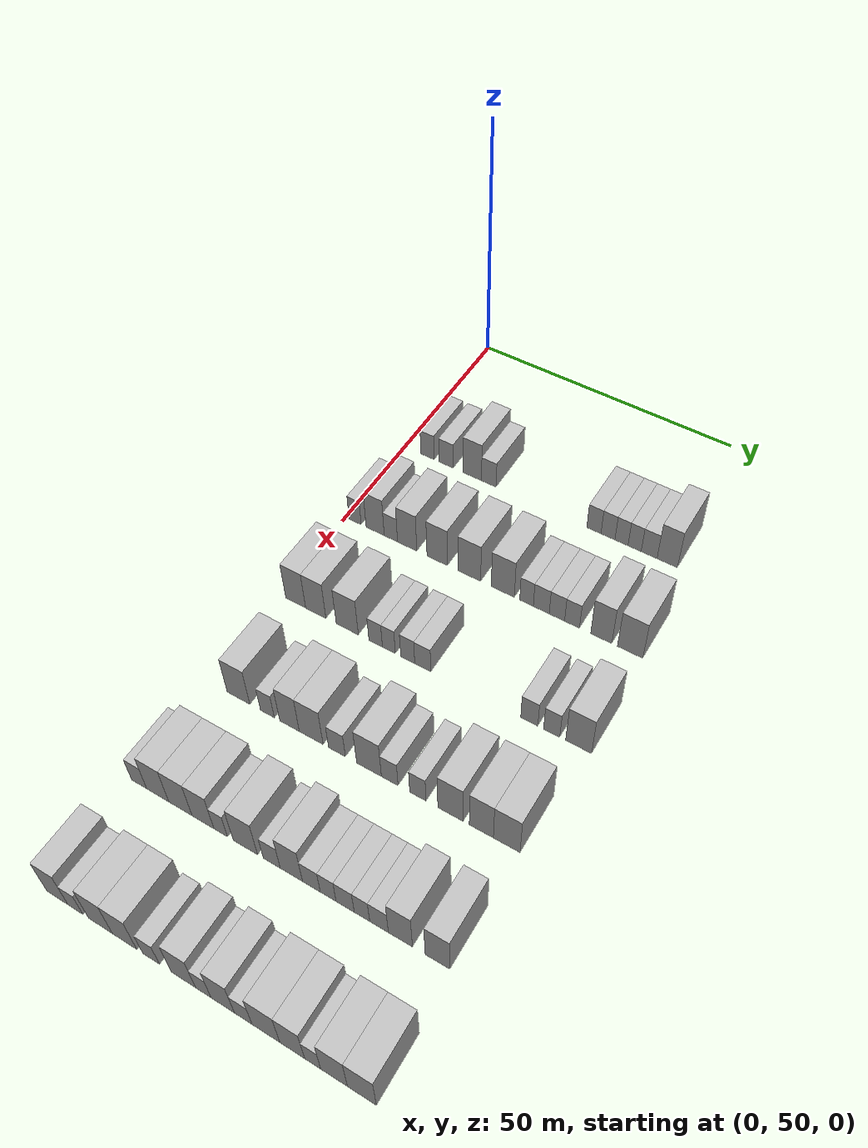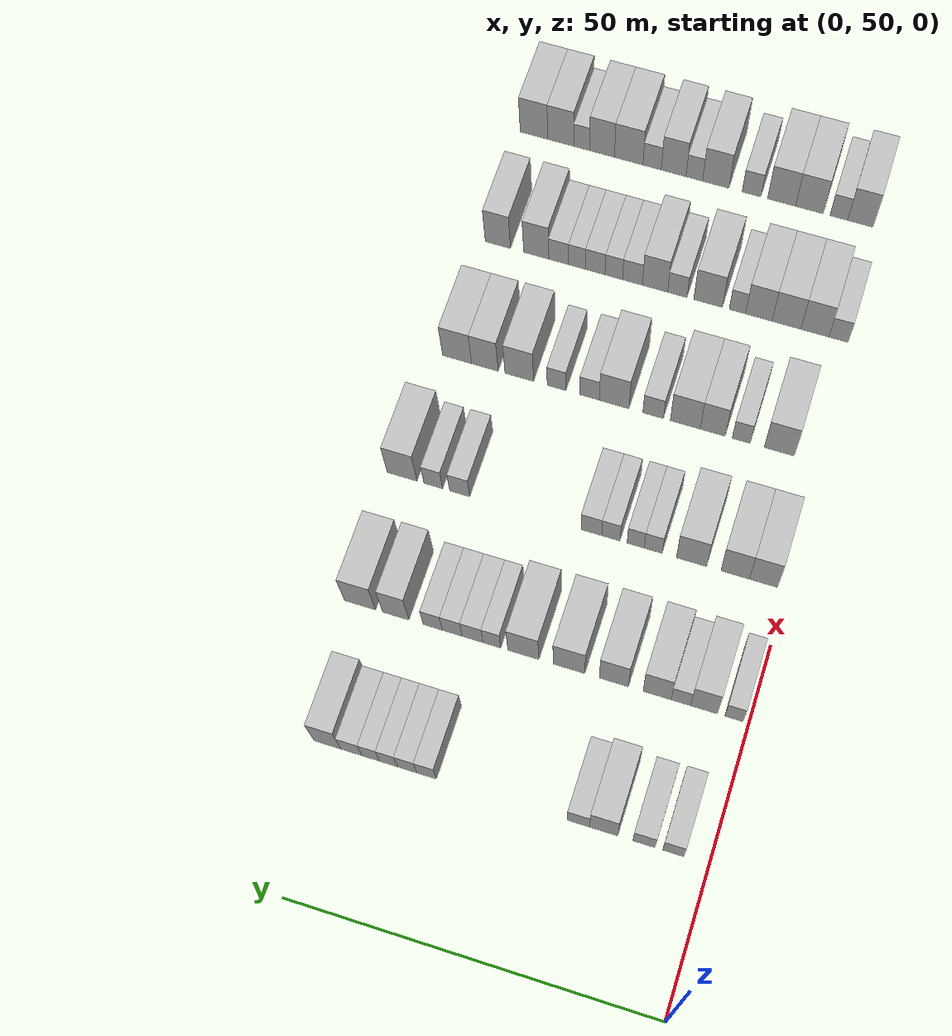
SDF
<sdf version="1.6">
 <world name="default">
  <model name="building_92">
   <static>1</static>
   <pose>25.0000 54.7748 0 0.000000 0.000000 0.000000</pose>
   <link name="link">
    <pose>0 0 3.00 0 0 0</pose>
    <collision name="collision"><geometry><box><size>10.0000 2.7850 6.0000</size></box></geometry></collision>
    <visual name="visual">
     <cast_shadows>0</cast_shadows>
     <geometry><box><size>10.0000 2.7850 6.0000</size></box></geometry>
     <material>
      <script>
       <uri>model://HANNAS_wall/materials/scripts</uri>
       <uri>model://HANNAS_wall/materials/textures</uri>
       <name>vrc/HANNAS_wall</name>
      </script>
     </material>
    </visual>
   </link>
  </model>
  <model name="building_93">
   <static>1</static>
   <pose>25.0000 58.6400 0 0.000000 0.000000 0.000000</pose>
   <link name="link">
    <pose>0 0 3.00 0 0 0</pose>
    <collision name="collision"><geometry><box><size>10.0000 2.9453 6.0000</size></box></geometry></collision>
    <visual name="visual">
     <cast_shadows>0</cast_shadows>
     <geometry><box><size>10.0000 2.9453 6.0000</size></box></geometry>
     <material>
      <script>
       <uri>model://HANNAS_wall/materials/scripts</uri>
       <uri>model://HANNAS_wall/materials/textures</uri>
       <name>vrc/HANNAS_wall</name>
      </script>
     </material>
    </visual>
   </link>
  </model>
  <model name="building_94">
   <static>1</static>
   <pose>25.0000 63.9746 0 0.000000 0.000000 0.000000</pose>
   <link name="link">
    <pose>0 0 4.50 0 0 0</pose>
    <collision name="collision"><geometry><box><size>10.0000 3.7239 9.0000</size></box></geometry></collision>
    <visual name="visual">
     <cast_shadows>0</cast_shadows>
     <geometry><box><size>10.0000 3.7239 9.0000</size></box></geometry>
     <material>
      <script>
       <uri>model://HANNAS_wall/materials/scripts</uri>
       <uri>model://HANNAS_wall/materials/textures</uri>
       <name>vrc/HANNAS_wall</name>
      </script>
     </material>
    </visual>
   </link>
  </model>
  <model name="building_95">
   <static>1</static>
   <pose>25.0000 67.3142 0 0.000000 0.000000 0.000000</pose>
   <link name="link">
    <pose>0 0 3.00 0 0 0</pose>
    <collision name="collision"><geometry><box><size>10.0000 2.9552 6.0000</size></box></geometry></collision>
    <visual name="visual">
     <cast_shadows>0</cast_shadows>
     <geometry><box><size>10.0000 2.9552 6.0000</size></box></geometry>
     <material>
      <script>
       <uri>model://HANNAS_wall/materials/scripts</uri>
       <uri>model://HANNAS_wall/materials/textures</uri>
       <name>vrc/HANNAS_wall</name>
      </script>
     </material>
    </visual>
   </link>
  </model>
  <model name="building_96">
   <static>1</static>
   <pose>25.0000 87.7977 0 0.000000 0.000000 0.000000</pose>
   <link name="link">
    <pose>0 0 3.00 0 0 0</pose>
    <collision name="collision"><geometry><box><size>10.0000 2.6706 6.0000</size></box></geometry></collision>
    <visual name="visual">
     <cast_shadows>0</cast_shadows>
     <geometry><box><size>10.0000 2.6706 6.0000</size></box></geometry>
     <material>
      <script>
       <uri>model://HANNAS_wall/materials/scripts</uri>
       <uri>model://HANNAS_wall/materials/textures</uri>
       <name>vrc/HANNAS_wall</name>
      </script>
     </material>
    </visual>
   </link>
  </model>
  <model name="building_97">
   <static>1</static>
   <pose>25.0000 90.4438 0 0.000000 0.000000 0.000000</pose>
   <link name="link">
    <pose>0 0 3.00 0 0 0</pose>
    <collision name="collision"><geometry><box><size>10.0000 2.6218 6.0000</size></box></geometry></collision>
    <visual name="visual">
     <cast_shadows>0</cast_shadows>
     <geometry><box><size>10.0000 2.6218 6.0000</size></box></geometry>
     <material>
      <script>
       <uri>model://HANNAS_wall/materials/scripts</uri>
       <uri>model://HANNAS_wall/materials/textures</uri>
       <name>vrc/HANNAS_wall</name>
      </script>
     </material>
    </visual>
   </link>
  </model>
  <model name="building_98">
   <static>1</static>
   <pose>25.0000 92.9707 0 0.000000 0.000000 0.000000</pose>
   <link name="link">
    <pose>0 0 3.00 0 0 0</pose>
    <collision name="collision"><geometry><box><size>10.0000 2.4320 6.0000</size></box></geometry></collision>
    <visual name="visual">
     <cast_shadows>0</cast_shadows>
     <geometry><box><size>10.0000 2.4320 6.0000</size></box></geometry>
     <material>
      <script>
       <uri>model://HANNAS_wall/materials/scripts</uri>
       <uri>model://HANNAS_wall/materials/textures</uri>
       <name>vrc/HANNAS_wall</name>
      </script>
     </material>
    </visual>
   </link>
  </model>
  <model name="building_99">
   <static>1</static>
   <pose>25.0000 95.4023 0 0.000000 0.000000 0.000000</pose>
   <link name="link">
    <pose>0 0 3.00 0 0 0</pose>
    <collision name="collision"><geometry><box><size>10.0000 2.4312 6.0000</size></box></geometry></collision>
    <visual name="visual">
     <cast_shadows>0</cast_shadows>
     <geometry><box><size>10.0000 2.4312 6.0000</size></box></geometry>
     <material>
      <script>
       <uri>model://HANNAS_wall/materials/scripts</uri>
       <uri>model://HANNAS_wall/materials/textures</uri>
       <name>vrc/HANNAS_wall</name>
      </script>
     </material>
    </visual>
   </link>
  </model>
  <model name="building_100">
   <static>1</static>
   <pose>25.0000 98.0720 0 0.000000 0.000000 0.000000</pose>
   <link name="link">
    <pose>0 0 3.00 0 0 0</pose>
    <collision name="collision"><geometry><box><size>10.0000 2.9082 6.0000</size></box></geometry></collision>
    <visual name="visual">
     <cast_shadows>0</cast_shadows>
     <geometry><box><size>10.0000 2.9082 6.0000</size></box></geometry>
     <material>
      <script>
       <uri>model://HANNAS_wall/materials/scripts</uri>
       <uri>model://HANNAS_wall/materials/textures</uri>
       <name>vrc/HANNAS_wall</name>
      </script>
     </material>
    </visual>
   </link>
  </model>
  <model name="building_101">
   <static>1</static>
   <pose>25.0000 101.3756 0 0.000000 0.000000 0.000000</pose>
   <link name="link">
    <pose>0 0 4.50 0 0 0</pose>
    <collision name="collision"><geometry><box><size>10.0000 3.6991 9.0000</size></box></geometry></collision>
    <visual name="visual">
     <cast_shadows>0</cast_shadows>
     <geometry><box><size>10.0000 3.6991 9.0000</size></box></geometry>
     <material>
      <script>
       <uri>model://HANNAS_wall/materials/scripts</uri>
       <uri>model://HANNAS_wall/materials/textures</uri>
       <name>vrc/HANNAS_wall</name>
      </script>
     </material>
    </visual>
   </link>
  </model>
  <model name="building_269">
   <static>1</static>
   <pose>44.0000 52.0626 0 0.000000 0.000000 0.000000</pose>
   <link name="link">
    <pose>0 0 3.00 0 0 0</pose>
    <collision name="collision"><geometry><box><size>10.0000 2.4507 6.0000</size></box></geometry></collision>
    <visual name="visual">
     <cast_shadows>0</cast_shadows>
     <geometry><box><size>10.0000 2.4507 6.0000</size></box></geometry>
     <material>
      <script>
       <uri>model://HANNAS_wall/materials/scripts</uri>
       <uri>model://HANNAS_wall/materials/textures</uri>
       <name>vrc/HANNAS_wall</name>
      </script>
     </material>
    </visual>
   </link>
  </model>
  <model name="building_270">
   <static>1</static>
   <pose>44.0000 56.1116 0 0.000000 0.000000 0.000000</pose>
   <link name="link">
    <pose>0 0 4.50 0 0 0</pose>
    <collision name="collision"><geometry><box><size>10.0000 3.6472 9.0000</size></box></geometry></collision>
    <visual name="visual">
     <cast_shadows>0</cast_shadows>
     <geometry><box><size>10.0000 3.6472 9.0000</size></box></geometry>
     <material>
      <script>
       <uri>model://HANNAS_wall/materials/scripts</uri>
       <uri>model://HANNAS_wall/materials/textures</uri>
       <name>vrc/HANNAS_wall</name>
      </script>
     </material>
    </visual>
   </link>
  </model>
  <model name="building_271">
   <static>1</static>
   <pose>44.0000 59.2634 0 0.000000 0.000000 0.000000</pose>
   <link name="link">
    <pose>0 0 3.00 0 0 0</pose>
    <collision name="collision"><geometry><box><size>10.0000 2.6564 6.0000</size></box></geometry></collision>
    <visual name="visual">
     <cast_shadows>0</cast_shadows>
     <geometry><box><size>10.0000 2.6564 6.0000</size></box></geometry>
     <material>
      <script>
       <uri>model://HANNAS_wall/materials/scripts</uri>
       <uri>model://HANNAS_wall/materials/textures</uri>
       <name>vrc/HANNAS_wall</name>
      </script>
     </material>
    </visual>
   </link>
  </model>
  <model name="building_272">
   <static>1</static>
   <pose>44.0000 62.4953 0 0.000000 0.000000 0.000000</pose>
   <link name="link">
    <pose>0 0 4.50 0 0 0</pose>
    <collision name="collision"><geometry><box><size>10.0000 3.8075 9.0000</size></box></geometry></collision>
    <visual name="visual">
     <cast_shadows>0</cast_shadows>
     <geometry><box><size>10.0000 3.8075 9.0000</size></box></geometry>
     <material>
      <script>
       <uri>model://HANNAS_wall/materials/scripts</uri>
       <uri>model://HANNAS_wall/materials/textures</uri>
       <name>vrc/HANNAS_wall</name>
      </script>
     </material>
    </visual>
   </link>
  </model>
  <model name="building_273">
   <static>1</static>
   <pose>44.0000 68.3885 0 0.000000 0.000000 0.000000</pose>
   <link name="link">
    <pose>0 0 4.50 0 0 0</pose>
    <collision name="collision"><geometry><box><size>10.0000 3.9789 9.0000</size></box></geometry></collision>
    <visual name="visual">
     <cast_shadows>0</cast_shadows>
     <geometry><box><size>10.0000 3.9789 9.0000</size></box></geometry>
     <material>
      <script>
       <uri>model://HANNAS_wall/materials/scripts</uri>
       <uri>model://HANNAS_wall/materials/textures</uri>
       <name>vrc/HANNAS_wall</name>
      </script>
     </material>
    </visual>
   </link>
  </model>
  <model name="building_274">
   <static>1</static>
   <pose>44.0000 74.5437 0 0.000000 0.000000 0.000000</pose>
   <link name="link">
    <pose>0 0 4.50 0 0 0</pose>
    <collision name="collision"><geometry><box><size>10.0000 4.3314 9.0000</size></box></geometry></collision>
    <visual name="visual">
     <cast_shadows>0</cast_shadows>
     <geometry><box><size>10.0000 4.3314 9.0000</size></box></geometry>
     <material>
      <script>
       <uri>model://HANNAS_wall/materials/scripts</uri>
       <uri>model://HANNAS_wall/materials/textures</uri>
       <name>vrc/HANNAS_wall</name>
      </script>
     </material>
    </visual>
   </link>
  </model>
  <model name="building_275">
   <static>1</static>
   <pose>44.0000 80.8634 0 0.000000 0.000000 0.000000</pose>
   <link name="link">
    <pose>0 0 4.50 0 0 0</pose>
    <collision name="collision"><geometry><box><size>10.0000 4.3080 9.0000</size></box></geometry></collision>
    <visual name="visual">
     <cast_shadows>0</cast_shadows>
     <geometry><box><size>10.0000 4.3080 9.0000</size></box></geometry>
     <material>
      <script>
       <uri>model://HANNAS_wall/materials/scripts</uri>
       <uri>model://HANNAS_wall/materials/textures</uri>
       <name>vrc/HANNAS_wall</name>
      </script>
     </material>
    </visual>
   </link>
  </model>
  <model name="building_276">
   <static>1</static>
   <pose>44.0000 85.2662 0 0.000000 0.000000 0.000000</pose>
   <link name="link">
    <pose>0 0 3.00 0 0 0</pose>
    <collision name="collision"><geometry><box><size>10.0000 2.4976 6.0000</size></box></geometry></collision>
    <visual name="visual">
     <cast_shadows>0</cast_shadows>
     <geometry><box><size>10.0000 2.4976 6.0000</size></box></geometry>
     <material>
      <script>
       <uri>model://HANNAS_wall/materials/scripts</uri>
       <uri>model://HANNAS_wall/materials/textures</uri>
       <name>vrc/HANNAS_wall</name>
      </script>
     </material>
    </visual>
   </link>
  </model>
  <model name="building_277">
   <static>1</static>
   <pose>44.0000 87.9666 0 0.000000 0.000000 0.000000</pose>
   <link name="link">
    <pose>0 0 3.00 0 0 0</pose>
    <collision name="collision"><geometry><box><size>10.0000 2.9033 6.0000</size></box></geometry></collision>
    <visual name="visual">
     <cast_shadows>0</cast_shadows>
     <geometry><box><size>10.0000 2.9033 6.0000</size></box></geometry>
     <material>
      <script>
       <uri>model://HANNAS_wall/materials/scripts</uri>
       <uri>model://HANNAS_wall/materials/textures</uri>
       <name>vrc/HANNAS_wall</name>
      </script>
     </material>
    </visual>
   </link>
  </model>
  <model name="building_278">
   <static>1</static>
   <pose>44.0000 90.8066 0 0.000000 0.000000 0.000000</pose>
   <link name="link">
    <pose>0 0 3.00 0 0 0</pose>
    <collision name="collision"><geometry><box><size>10.0000 2.7768 6.0000</size></box></geometry></collision>
    <visual name="visual">
     <cast_shadows>0</cast_shadows>
     <geometry><box><size>10.0000 2.7768 6.0000</size></box></geometry>
     <material>
      <script>
       <uri>model://HANNAS_wall/materials/scripts</uri>
       <uri>model://HANNAS_wall/materials/textures</uri>
       <name>vrc/HANNAS_wall</name>
      </script>
     </material>
    </visual>
   </link>
  </model>
  <model name="building_279">
   <static>1</static>
   <pose>44.0000 93.5297 0 0.000000 0.000000 0.000000</pose>
   <link name="link">
    <pose>0 0 3.00 0 0 0</pose>
    <collision name="collision"><geometry><box><size>10.0000 2.6693 6.0000</size></box></geometry></collision>
    <visual name="visual">
     <cast_shadows>0</cast_shadows>
     <geometry><box><size>10.0000 2.6693 6.0000</size></box></geometry>
     <material>
      <script>
       <uri>model://HANNAS_wall/materials/scripts</uri>
       <uri>model://HANNAS_wall/materials/textures</uri>
       <name>vrc/HANNAS_wall</name>
      </script>
     </material>
    </visual>
   </link>
  </model>
  <model name="building_280">
   <static>1</static>
   <pose>44.0000 98.7212 0 0.000000 0.000000 0.000000</pose>
   <link name="link">
    <pose>0 0 4.50 0 0 0</pose>
    <collision name="collision"><geometry><box><size>10.0000 3.7138 9.0000</size></box></geometry></collision>
    <visual name="visual">
     <cast_shadows>0</cast_shadows>
     <geometry><box><size>10.0000 3.7138 9.0000</size></box></geometry>
     <material>
      <script>
       <uri>model://HANNAS_wall/materials/scripts</uri>
       <uri>model://HANNAS_wall/materials/textures</uri>
       <name>vrc/HANNAS_wall</name>
      </script>
     </material>
    </visual>
   </link>
  </model>
  <model name="building_281">
   <static>1</static>
   <pose>44.0000 103.7792 0 0.000000 0.000000 0.000000</pose>
   <link name="link">
    <pose>0 0 4.50 0 0 0</pose>
    <collision name="collision"><geometry><box><size>10.0000 4.4023 9.0000</size></box></geometry></collision>
    <visual name="visual">
     <cast_shadows>0</cast_shadows>
     <geometry><box><size>10.0000 4.4023 9.0000</size></box></geometry>
     <material>
      <script>
       <uri>model://HANNAS_wall/materials/scripts</uri>
       <uri>model://HANNAS_wall/materials/textures</uri>
       <name>vrc/HANNAS_wall</name>
      </script>
     </material>
    </visual>
   </link>
  </model>
  <model name="building_425">
   <static>1</static>
   <pose>63.0000 53.2278 0 0.000000 0.000000 0.000000</pose>
   <link name="link">
    <pose>0 0 4.50 0 0 0</pose>
    <collision name="collision"><geometry><box><size>10.0000 3.9088 9.0000</size></box></geometry></collision>
    <visual name="visual">
     <cast_shadows>0</cast_shadows>
     <geometry><box><size>10.0000 3.9088 9.0000</size></box></geometry>
     <material>
      <script>
       <uri>model://HANNAS_wall/materials/scripts</uri>
       <uri>model://HANNAS_wall/materials/textures</uri>
       <name>vrc/HANNAS_wall</name>
      </script>
     </material>
    </visual>
   </link>
  </model>
  <model name="building_426">
   <static>1</static>
   <pose>63.0000 57.1598 0 0.000000 0.000000 0.000000</pose>
   <link name="link">
    <pose>0 0 4.50 0 0 0</pose>
    <collision name="collision"><geometry><box><size>10.0000 3.9551 9.0000</size></box></geometry></collision>
    <visual name="visual">
     <cast_shadows>0</cast_shadows>
     <geometry><box><size>10.0000 3.9551 9.0000</size></box></geometry>
     <material>
      <script>
       <uri>model://HANNAS_wall/materials/scripts</uri>
       <uri>model://HANNAS_wall/materials/textures</uri>
       <name>vrc/HANNAS_wall</name>
      </script>
     </material>
    </visual>
   </link>
  </model>
  <model name="building_427">
   <static>1</static>
   <pose>63.0000 63.2493 0 0.000000 0.000000 0.000000</pose>
   <link name="link">
    <pose>0 0 4.50 0 0 0</pose>
    <collision name="collision"><geometry><box><size>10.0000 4.2239 9.0000</size></box></geometry></collision>
    <visual name="visual">
     <cast_shadows>0</cast_shadows>
     <geometry><box><size>10.0000 4.2239 9.0000</size></box></geometry>
     <material>
      <script>
       <uri>model://HANNAS_wall/materials/scripts</uri>
       <uri>model://HANNAS_wall/materials/textures</uri>
       <name>vrc/HANNAS_wall</name>
      </script>
     </material>
    </visual>
   </link>
  </model>
  <model name="building_428">
   <static>1</static>
   <pose>63.0000 68.6298 0 0.000000 0.000000 0.000000</pose>
   <link name="link">
    <pose>0 0 3.00 0 0 0</pose>
    <collision name="collision"><geometry><box><size>10.0000 2.5370 6.0000</size></box></geometry></collision>
    <visual name="visual">
     <cast_shadows>0</cast_shadows>
     <geometry><box><size>10.0000 2.5370 6.0000</size></box></geometry>
     <material>
      <script>
       <uri>model://HANNAS_wall/materials/scripts</uri>
       <uri>model://HANNAS_wall/materials/textures</uri>
       <name>vrc/HANNAS_wall</name>
      </script>
     </material>
    </visual>
   </link>
  </model>
  <model name="building_429">
   <static>1</static>
   <pose>63.0000 71.1015 0 0.000000 0.000000 0.000000</pose>
   <link name="link">
    <pose>0 0 3.00 0 0 0</pose>
    <collision name="collision"><geometry><box><size>10.0000 2.4066 6.0000</size></box></geometry></collision>
    <visual name="visual">
     <cast_shadows>0</cast_shadows>
     <geometry><box><size>10.0000 2.4066 6.0000</size></box></geometry>
     <material>
      <script>
       <uri>model://HANNAS_wall/materials/scripts</uri>
       <uri>model://HANNAS_wall/materials/textures</uri>
       <name>vrc/HANNAS_wall</name>
      </script>
     </material>
    </visual>
   </link>
  </model>
  <model name="building_430">
   <static>1</static>
   <pose>63.0000 74.5946 0 0.000000 0.000000 0.000000</pose>
   <link name="link">
    <pose>0 0 3.00 0 0 0</pose>
    <collision name="collision"><geometry><box><size>10.0000 2.5795 6.0000</size></box></geometry></collision>
    <visual name="visual">
     <cast_shadows>0</cast_shadows>
     <geometry><box><size>10.0000 2.5795 6.0000</size></box></geometry>
     <material>
      <script>
       <uri>model://HANNAS_wall/materials/scripts</uri>
       <uri>model://HANNAS_wall/materials/textures</uri>
       <name>vrc/HANNAS_wall</name>
      </script>
     </material>
    </visual>
   </link>
  </model>
  <model name="building_431">
   <static>1</static>
   <pose>63.0000 77.3540 0 0.000000 0.000000 0.000000</pose>
   <link name="link">
    <pose>0 0 3.00 0 0 0</pose>
    <collision name="collision"><geometry><box><size>10.0000 2.9392 6.0000</size></box></geometry></collision>
    <visual name="visual">
     <cast_shadows>0</cast_shadows>
     <geometry><box><size>10.0000 2.9392 6.0000</size></box></geometry>
     <material>
      <script>
       <uri>model://HANNAS_wall/materials/scripts</uri>
       <uri>model://HANNAS_wall/materials/textures</uri>
       <name>vrc/HANNAS_wall</name>
      </script>
     </material>
    </visual>
   </link>
  </model>
  <model name="building_432">
   <static>1</static>
   <pose>63.0000 96.1839 0 0.000000 0.000000 0.000000</pose>
   <link name="link">
    <pose>0 0 3.00 0 0 0</pose>
    <collision name="collision"><geometry><box><size>10.0000 2.9068 6.0000</size></box></geometry></collision>
    <visual name="visual">
     <cast_shadows>0</cast_shadows>
     <geometry><box><size>10.0000 2.9068 6.0000</size></box></geometry>
     <material>
      <script>
       <uri>model://HANNAS_wall/materials/scripts</uri>
       <uri>model://HANNAS_wall/materials/textures</uri>
       <name>vrc/HANNAS_wall</name>
      </script>
     </material>
    </visual>
   </link>
  </model>
  <model name="building_433">
   <static>1</static>
   <pose>63.0000 99.9972 0 0.000000 0.000000 0.000000</pose>
   <link name="link">
    <pose>0 0 3.00 0 0 0</pose>
    <collision name="collision"><geometry><box><size>10.0000 2.7198 6.0000</size></box></geometry></collision>
    <visual name="visual">
     <cast_shadows>0</cast_shadows>
     <geometry><box><size>10.0000 2.7198 6.0000</size></box></geometry>
     <material>
      <script>
       <uri>model://HANNAS_wall/materials/scripts</uri>
       <uri>model://HANNAS_wall/materials/textures</uri>
       <name>vrc/HANNAS_wall</name>
      </script>
     </material>
    </visual>
   </link>
  </model>
  <model name="building_434">
   <static>1</static>
   <pose>63.0000 104.5189 0 0.000000 0.000000 0.000000</pose>
   <link name="link">
    <pose>0 0 4.50 0 0 0</pose>
    <collision name="collision"><geometry><box><size>10.0000 4.3235 9.0000</size></box></geometry></collision>
    <visual name="visual">
     <cast_shadows>0</cast_shadows>
     <geometry><box><size>10.0000 4.3235 9.0000</size></box></geometry>
     <material>
      <script>
       <uri>model://HANNAS_wall/materials/scripts</uri>
       <uri>model://HANNAS_wall/materials/textures</uri>
       <name>vrc/HANNAS_wall</name>
      </script>
     </material>
    </visual>
   </link>
  </model>
  <model name="building_599">
   <static>1</static>
   <pose>82.0000 56.0926 0 0.000000 0.000000 0.000000</pose>
   <link name="link">
    <pose>0 0 4.50 0 0 0</pose>
    <collision name="collision"><geometry><box><size>10.0000 4.2965 9.0000</size></box></geometry></collision>
    <visual name="visual">
     <cast_shadows>0</cast_shadows>
     <geometry><box><size>10.0000 4.2965 9.0000</size></box></geometry>
     <material>
      <script>
       <uri>model://HANNAS_wall/materials/scripts</uri>
       <uri>model://HANNAS_wall/materials/textures</uri>
       <name>vrc/HANNAS_wall</name>
      </script>
     </material>
    </visual>
   </link>
  </model>
  <model name="building_600">
   <static>1</static>
   <pose>82.0000 61.5364 0 0.000000 0.000000 0.000000</pose>
   <link name="link">
    <pose>0 0 3.00 0 0 0</pose>
    <collision name="collision"><geometry><box><size>10.0000 2.5910 6.0000</size></box></geometry></collision>
    <visual name="visual">
     <cast_shadows>0</cast_shadows>
     <geometry><box><size>10.0000 2.5910 6.0000</size></box></geometry>
     <material>
      <script>
       <uri>model://HANNAS_wall/materials/scripts</uri>
       <uri>model://HANNAS_wall/materials/textures</uri>
       <name>vrc/HANNAS_wall</name>
      </script>
     </material>
    </visual>
   </link>
  </model>
  <model name="building_601">
   <static>1</static>
   <pose>82.0000 65.6326 0 0.000000 0.000000 0.000000</pose>
   <link name="link">
    <pose>0 0 4.50 0 0 0</pose>
    <collision name="collision"><geometry><box><size>10.0000 3.6015 9.0000</size></box></geometry></collision>
    <visual name="visual">
     <cast_shadows>0</cast_shadows>
     <geometry><box><size>10.0000 3.6015 9.0000</size></box></geometry>
     <material>
      <script>
       <uri>model://HANNAS_wall/materials/scripts</uri>
       <uri>model://HANNAS_wall/materials/textures</uri>
       <name>vrc/HANNAS_wall</name>
      </script>
     </material>
    </visual>
   </link>
  </model>
  <model name="building_602">
   <static>1</static>
   <pose>82.0000 69.5890 0 0.000000 0.000000 0.000000</pose>
   <link name="link">
    <pose>0 0 4.50 0 0 0</pose>
    <collision name="collision"><geometry><box><size>10.0000 4.3112 9.0000</size></box></geometry></collision>
    <visual name="visual">
     <cast_shadows>0</cast_shadows>
     <geometry><box><size>10.0000 4.3112 9.0000</size></box></geometry>
     <material>
      <script>
       <uri>model://HANNAS_wall/materials/scripts</uri>
       <uri>model://HANNAS_wall/materials/textures</uri>
       <name>vrc/HANNAS_wall</name>
      </script>
     </material>
    </visual>
   </link>
  </model>
  <model name="building_603">
   <static>1</static>
   <pose>82.0000 74.2358 0 0.000000 0.000000 0.000000</pose>
   <link name="link">
    <pose>0 0 3.00 0 0 0</pose>
    <collision name="collision"><geometry><box><size>10.0000 2.9824 6.0000</size></box></geometry></collision>
    <visual name="visual">
     <cast_shadows>0</cast_shadows>
     <geometry><box><size>10.0000 2.9824 6.0000</size></box></geometry>
     <material>
      <script>
       <uri>model://HANNAS_wall/materials/scripts</uri>
       <uri>model://HANNAS_wall/materials/textures</uri>
       <name>vrc/HANNAS_wall</name>
      </script>
     </material>
    </visual>
   </link>
  </model>
  <model name="building_604">
   <static>1</static>
   <pose>82.0000 79.8870 0 0.000000 0.000000 0.000000</pose>
   <link name="link">
    <pose>0 0 4.50 0 0 0</pose>
    <collision name="collision"><geometry><box><size>10.0000 4.3200 9.0000</size></box></geometry></collision>
    <visual name="visual">
     <cast_shadows>0</cast_shadows>
     <geometry><box><size>10.0000 4.3200 9.0000</size></box></geometry>
     <material>
      <script>
       <uri>model://HANNAS_wall/materials/scripts</uri>
       <uri>model://HANNAS_wall/materials/textures</uri>
       <name>vrc/HANNAS_wall</name>
      </script>
     </material>
    </visual>
   </link>
  </model>
  <model name="building_605">
   <static>1</static>
   <pose>82.0000 83.4866 0 0.000000 0.000000 0.000000</pose>
   <link name="link">
    <pose>0 0 3.00 0 0 0</pose>
    <collision name="collision"><geometry><box><size>10.0000 2.8792 6.0000</size></box></geometry></collision>
    <visual name="visual">
     <cast_shadows>0</cast_shadows>
     <geometry><box><size>10.0000 2.8792 6.0000</size></box></geometry>
     <material>
      <script>
       <uri>model://HANNAS_wall/materials/scripts</uri>
       <uri>model://HANNAS_wall/materials/textures</uri>
       <name>vrc/HANNAS_wall</name>
      </script>
     </material>
    </visual>
   </link>
  </model>
  <model name="building_606">
   <static>1</static>
   <pose>82.0000 88.3056 0 0.000000 0.000000 0.000000</pose>
   <link name="link">
    <pose>0 0 3.00 0 0 0</pose>
    <collision name="collision"><geometry><box><size>10.0000 2.7590 6.0000</size></box></geometry></collision>
    <visual name="visual">
     <cast_shadows>0</cast_shadows>
     <geometry><box><size>10.0000 2.7590 6.0000</size></box></geometry>
     <material>
      <script>
       <uri>model://HANNAS_wall/materials/scripts</uri>
       <uri>model://HANNAS_wall/materials/textures</uri>
       <name>vrc/HANNAS_wall</name>
      </script>
     </material>
    </visual>
   </link>
  </model>
  <model name="building_607">
   <static>1</static>
   <pose>82.0000 93.7947 0 0.000000 0.000000 0.000000</pose>
   <link name="link">
    <pose>0 0 4.50 0 0 0</pose>
    <collision name="collision"><geometry><box><size>10.0000 4.2192 9.0000</size></box></geometry></collision>
    <visual name="visual">
     <cast_shadows>0</cast_shadows>
     <geometry><box><size>10.0000 4.2192 9.0000</size></box></geometry>
     <material>
      <script>
       <uri>model://HANNAS_wall/materials/scripts</uri>
       <uri>model://HANNAS_wall/materials/textures</uri>
       <name>vrc/HANNAS_wall</name>
      </script>
     </material>
    </visual>
   </link>
  </model>
  <model name="building_608">
   <static>1</static>
   <pose>82.0000 98.8720 0 0.000000 0.000000 0.000000</pose>
   <link name="link">
    <pose>0 0 4.50 0 0 0</pose>
    <collision name="collision"><geometry><box><size>10.0000 3.9354 9.0000</size></box></geometry></collision>
    <visual name="visual">
     <cast_shadows>0</cast_shadows>
     <geometry><box><size>10.0000 3.9354 9.0000</size></box></geometry>
     <material>
      <script>
       <uri>model://HANNAS_wall/materials/scripts</uri>
       <uri>model://HANNAS_wall/materials/textures</uri>
       <name>vrc/HANNAS_wall</name>
      </script>
     </material>
    </visual>
   </link>
  </model>
  <model name="building_609">
   <static>1</static>
   <pose>82.0000 102.9930 0 0.000000 0.000000 0.000000</pose>
   <link name="link">
    <pose>0 0 4.50 0 0 0</pose>
    <collision name="collision"><geometry><box><size>10.0000 4.3066 9.0000</size></box></geometry></collision>
    <visual name="visual">
     <cast_shadows>0</cast_shadows>
     <geometry><box><size>10.0000 4.3066 9.0000</size></box></geometry>
     <material>
      <script>
       <uri>model://HANNAS_wall/materials/scripts</uri>
       <uri>model://HANNAS_wall/materials/textures</uri>
       <name>vrc/HANNAS_wall</name>
      </script>
     </material>
    </visual>
   </link>
  </model>
  <model name="building_772">
   <static>1</static>
   <pose>101.0000 52.5023 0 0.000000 0.000000 0.000000</pose>
   <link name="link">
    <pose>0 0 3.00 0 0 0</pose>
    <collision name="collision"><geometry><box><size>10.0000 2.8145 6.0000</size></box></geometry></collision>
    <visual name="visual">
     <cast_shadows>0</cast_shadows>
     <geometry><box><size>10.0000 2.8145 6.0000</size></box></geometry>
     <material>
      <script>
       <uri>model://HANNAS_wall/materials/scripts</uri>
       <uri>model://HANNAS_wall/materials/textures</uri>
       <name>vrc/HANNAS_wall</name>
      </script>
     </material>
    </visual>
   </link>
  </model>
  <model name="building_773">
   <static>1</static>
   <pose>101.0000 55.9539 0 0.000000 0.000000 0.000000</pose>
   <link name="link">
    <pose>0 0 4.50 0 0 0</pose>
    <collision name="collision"><geometry><box><size>10.0000 4.0887 9.0000</size></box></geometry></collision>
    <visual name="visual">
     <cast_shadows>0</cast_shadows>
     <geometry><box><size>10.0000 4.0887 9.0000</size></box></geometry>
     <material>
      <script>
       <uri>model://HANNAS_wall/materials/scripts</uri>
       <uri>model://HANNAS_wall/materials/textures</uri>
       <name>vrc/HANNAS_wall</name>
      </script>
     </material>
    </visual>
   </link>
  </model>
  <model name="building_774">
   <static>1</static>
   <pose>101.0000 60.1109 0 0.000000 0.000000 0.000000</pose>
   <link name="link">
    <pose>0 0 4.50 0 0 0</pose>
    <collision name="collision"><geometry><box><size>10.0000 4.2253 9.0000</size></box></geometry></collision>
    <visual name="visual">
     <cast_shadows>0</cast_shadows>
     <geometry><box><size>10.0000 4.2253 9.0000</size></box></geometry>
     <material>
      <script>
       <uri>model://HANNAS_wall/materials/scripts</uri>
       <uri>model://HANNAS_wall/materials/textures</uri>
       <name>vrc/HANNAS_wall</name>
      </script>
     </material>
    </visual>
   </link>
  </model>
  <model name="building_775">
   <static>1</static>
   <pose>101.0000 64.1785 0 0.000000 0.000000 0.000000</pose>
   <link name="link">
    <pose>0 0 4.50 0 0 0</pose>
    <collision name="collision"><geometry><box><size>10.0000 3.9100 9.0000</size></box></geometry></collision>
    <visual name="visual">
     <cast_shadows>0</cast_shadows>
     <geometry><box><size>10.0000 3.9100 9.0000</size></box></geometry>
     <material>
      <script>
       <uri>model://HANNAS_wall/materials/scripts</uri>
       <uri>model://HANNAS_wall/materials/textures</uri>
       <name>vrc/HANNAS_wall</name>
      </script>
     </material>
    </visual>
   </link>
  </model>
  <model name="building_776">
   <static>1</static>
   <pose>101.0000 67.3393 0 0.000000 0.000000 0.000000</pose>
   <link name="link">
    <pose>0 0 3.00 0 0 0</pose>
    <collision name="collision"><geometry><box><size>10.0000 2.4117 6.0000</size></box></geometry></collision>
    <visual name="visual">
     <cast_shadows>0</cast_shadows>
     <geometry><box><size>10.0000 2.4117 6.0000</size></box></geometry>
     <material>
      <script>
       <uri>model://HANNAS_wall/materials/scripts</uri>
       <uri>model://HANNAS_wall/materials/textures</uri>
       <name>vrc/HANNAS_wall</name>
      </script>
     </material>
    </visual>
   </link>
  </model>
  <model name="building_777">
   <static>1</static>
   <pose>101.0000 71.6656 0 0.000000 0.000000 0.000000</pose>
   <link name="link">
    <pose>0 0 4.50 0 0 0</pose>
    <collision name="collision"><geometry><box><size>10.0000 4.2410 9.0000</size></box></geometry></collision>
    <visual name="visual">
     <cast_shadows>0</cast_shadows>
     <geometry><box><size>10.0000 4.2410 9.0000</size></box></geometry>
     <material>
      <script>
       <uri>model://HANNAS_wall/materials/scripts</uri>
       <uri>model://HANNAS_wall/materials/textures</uri>
       <name>vrc/HANNAS_wall</name>
      </script>
     </material>
    </visual>
   </link>
  </model>
  <model name="building_778">
   <static>1</static>
   <pose>101.0000 76.2319 0 0.000000 0.000000 0.000000</pose>
   <link name="link">
    <pose>0 0 3.00 0 0 0</pose>
    <collision name="collision"><geometry><box><size>10.0000 2.8915 6.0000</size></box></geometry></collision>
    <visual name="visual">
     <cast_shadows>0</cast_shadows>
     <geometry><box><size>10.0000 2.8915 6.0000</size></box></geometry>
     <material>
      <script>
       <uri>model://HANNAS_wall/materials/scripts</uri>
       <uri>model://HANNAS_wall/materials/textures</uri>
       <name>vrc/HANNAS_wall</name>
      </script>
     </material>
    </visual>
   </link>
  </model>
  <model name="building_779">
   <static>1</static>
   <pose>101.0000 79.5654 0 0.000000 0.000000 0.000000</pose>
   <link name="link">
    <pose>0 0 4.50 0 0 0</pose>
    <collision name="collision"><geometry><box><size>10.0000 3.7754 9.0000</size></box></geometry></collision>
    <visual name="visual">
     <cast_shadows>0</cast_shadows>
     <geometry><box><size>10.0000 3.7754 9.0000</size></box></geometry>
     <material>
      <script>
       <uri>model://HANNAS_wall/materials/scripts</uri>
       <uri>model://HANNAS_wall/materials/textures</uri>
       <name>vrc/HANNAS_wall</name>
      </script>
     </material>
    </visual>
   </link>
  </model>
  <model name="building_780">
   <static>1</static>
   <pose>101.0000 82.9402 0 0.000000 0.000000 0.000000</pose>
   <link name="link">
    <pose>0 0 3.00 0 0 0</pose>
    <collision name="collision"><geometry><box><size>10.0000 2.9743 6.0000</size></box></geometry></collision>
    <visual name="visual">
     <cast_shadows>0</cast_shadows>
     <geometry><box><size>10.0000 2.9743 6.0000</size></box></geometry>
     <material>
      <script>
       <uri>model://HANNAS_wall/materials/scripts</uri>
       <uri>model://HANNAS_wall/materials/textures</uri>
       <name>vrc/HANNAS_wall</name>
      </script>
     </material>
    </visual>
   </link>
  </model>
  <model name="building_781">
   <static>1</static>
   <pose>101.0000 85.7361 0 0.000000 0.000000 0.000000</pose>
   <link name="link">
    <pose>0 0 3.00 0 0 0</pose>
    <collision name="collision"><geometry><box><size>10.0000 2.6175 6.0000</size></box></geometry></collision>
    <visual name="visual">
     <cast_shadows>0</cast_shadows>
     <geometry><box><size>10.0000 2.6175 6.0000</size></box></geometry>
     <material>
      <script>
       <uri>model://HANNAS_wall/materials/scripts</uri>
       <uri>model://HANNAS_wall/materials/textures</uri>
       <name>vrc/HANNAS_wall</name>
      </script>
     </material>
    </visual>
   </link>
  </model>
  <model name="building_782">
   <static>1</static>
   <pose>101.0000 88.5264 0 0.000000 0.000000 0.000000</pose>
   <link name="link">
    <pose>0 0 3.00 0 0 0</pose>
    <collision name="collision"><geometry><box><size>10.0000 2.9631 6.0000</size></box></geometry></collision>
    <visual name="visual">
     <cast_shadows>0</cast_shadows>
     <geometry><box><size>10.0000 2.9631 6.0000</size></box></geometry>
     <material>
      <script>
       <uri>model://HANNAS_wall/materials/scripts</uri>
       <uri>model://HANNAS_wall/materials/textures</uri>
       <name>vrc/HANNAS_wall</name>
      </script>
     </material>
    </visual>
   </link>
  </model>
  <model name="building_783">
   <static>1</static>
   <pose>101.0000 91.2627 0 0.000000 0.000000 0.000000</pose>
   <link name="link">
    <pose>0 0 3.00 0 0 0</pose>
    <collision name="collision"><geometry><box><size>10.0000 2.5095 6.0000</size></box></geometry></collision>
    <visual name="visual">
     <cast_shadows>0</cast_shadows>
     <geometry><box><size>10.0000 2.5095 6.0000</size></box></geometry>
     <material>
      <script>
       <uri>model://HANNAS_wall/materials/scripts</uri>
       <uri>model://HANNAS_wall/materials/textures</uri>
       <name>vrc/HANNAS_wall</name>
      </script>
     </material>
    </visual>
   </link>
  </model>
  <model name="building_784">
   <static>1</static>
   <pose>101.0000 94.0070 0 0.000000 0.000000 0.000000</pose>
   <link name="link">
    <pose>0 0 3.00 0 0 0</pose>
    <collision name="collision"><geometry><box><size>10.0000 2.9790 6.0000</size></box></geometry></collision>
    <visual name="visual">
     <cast_shadows>0</cast_shadows>
     <geometry><box><size>10.0000 2.9790 6.0000</size></box></geometry>
     <material>
      <script>
       <uri>model://HANNAS_wall/materials/scripts</uri>
       <uri>model://HANNAS_wall/materials/textures</uri>
       <name>vrc/HANNAS_wall</name>
      </script>
     </material>
    </visual>
   </link>
  </model>
  <model name="building_785">
   <static>1</static>
   <pose>101.0000 97.4019 0 0.000000 0.000000 0.000000</pose>
   <link name="link">
    <pose>0 0 4.50 0 0 0</pose>
    <collision name="collision"><geometry><box><size>10.0000 3.8109 9.0000</size></box></geometry></collision>
    <visual name="visual">
     <cast_shadows>0</cast_shadows>
     <geometry><box><size>10.0000 3.8109 9.0000</size></box></geometry>
     <material>
      <script>
       <uri>model://HANNAS_wall/materials/scripts</uri>
       <uri>model://HANNAS_wall/materials/textures</uri>
       <name>vrc/HANNAS_wall</name>
      </script>
     </material>
    </visual>
   </link>
  </model>
  <model name="building_786">
   <static>1</static>
   <pose>101.0000 103.2199 0 0.000000 0.000000 0.000000</pose>
   <link name="link">
    <pose>0 0 4.50 0 0 0</pose>
    <collision name="collision"><geometry><box><size>10.0000 3.8250 9.0000</size></box></geometry></collision>
    <visual name="visual">
     <cast_shadows>0</cast_shadows>
     <geometry><box><size>10.0000 3.8250 9.0000</size></box></geometry>
     <material>
      <script>
       <uri>model://HANNAS_wall/materials/scripts</uri>
       <uri>model://HANNAS_wall/materials/textures</uri>
       <name>vrc/HANNAS_wall</name>
      </script>
     </material>
    </visual>
   </link>
  </model>
  <model name="building_935">
   <static>1</static>
   <pose>120.0000 54.0568 0 0.000000 0.000000 0.000000</pose>
   <link name="link">
    <pose>0 0 4.50 0 0 0</pose>
    <collision name="collision"><geometry><box><size>10.0000 3.8105 9.0000</size></box></geometry></collision>
    <visual name="visual">
     <cast_shadows>0</cast_shadows>
     <geometry><box><size>10.0000 3.8105 9.0000</size></box></geometry>
     <material>
      <script>
       <uri>model://HANNAS_wall/materials/scripts</uri>
       <uri>model://HANNAS_wall/materials/textures</uri>
       <name>vrc/HANNAS_wall</name>
      </script>
     </material>
    </visual>
   </link>
  </model>
  <model name="building_936">
   <static>1</static>
   <pose>120.0000 57.2849 0 0.000000 0.000000 0.000000</pose>
   <link name="link">
    <pose>0 0 3.00 0 0 0</pose>
    <collision name="collision"><geometry><box><size>10.0000 2.6457 6.0000</size></box></geometry></collision>
    <visual name="visual">
     <cast_shadows>0</cast_shadows>
     <geometry><box><size>10.0000 2.6457 6.0000</size></box></geometry>
     <material>
      <script>
       <uri>model://HANNAS_wall/materials/scripts</uri>
       <uri>model://HANNAS_wall/materials/textures</uri>
       <name>vrc/HANNAS_wall</name>
      </script>
     </material>
    </visual>
   </link>
  </model>
  <model name="building_937">
   <static>1</static>
   <pose>120.0000 61.6963 0 0.000000 0.000000 0.000000</pose>
   <link name="link">
    <pose>0 0 4.50 0 0 0</pose>
    <collision name="collision"><geometry><box><size>10.0000 4.1772 9.0000</size></box></geometry></collision>
    <visual name="visual">
     <cast_shadows>0</cast_shadows>
     <geometry><box><size>10.0000 4.1772 9.0000</size></box></geometry>
     <material>
      <script>
       <uri>model://HANNAS_wall/materials/scripts</uri>
       <uri>model://HANNAS_wall/materials/textures</uri>
       <name>vrc/HANNAS_wall</name>
      </script>
     </material>
    </visual>
   </link>
  </model>
  <model name="building_938">
   <static>1</static>
   <pose>120.0000 65.8961 0 0.000000 0.000000 0.000000</pose>
   <link name="link">
    <pose>0 0 4.50 0 0 0</pose>
    <collision name="collision"><geometry><box><size>10.0000 4.2222 9.0000</size></box></geometry></collision>
    <visual name="visual">
     <cast_shadows>0</cast_shadows>
     <geometry><box><size>10.0000 4.2222 9.0000</size></box></geometry>
     <material>
      <script>
       <uri>model://HANNAS_wall/materials/scripts</uri>
       <uri>model://HANNAS_wall/materials/textures</uri>
       <name>vrc/HANNAS_wall</name>
      </script>
     </material>
    </visual>
   </link>
  </model>
  <model name="building_939">
   <static>1</static>
   <pose>120.0000 70.4310 0 0.000000 0.000000 0.000000</pose>
   <link name="link">
    <pose>0 0 3.00 0 0 0</pose>
    <collision name="collision"><geometry><box><size>10.0000 2.8477 6.0000</size></box></geometry></collision>
    <visual name="visual">
     <cast_shadows>0</cast_shadows>
     <geometry><box><size>10.0000 2.8477 6.0000</size></box></geometry>
     <material>
      <script>
       <uri>model://HANNAS_wall/materials/scripts</uri>
       <uri>model://HANNAS_wall/materials/textures</uri>
       <name>vrc/HANNAS_wall</name>
      </script>
     </material>
    </visual>
   </link>
  </model>
  <model name="building_940">
   <static>1</static>
   <pose>120.0000 75.8707 0 0.000000 0.000000 0.000000</pose>
   <link name="link">
    <pose>0 0 4.50 0 0 0</pose>
    <collision name="collision"><geometry><box><size>10.0000 4.0316 9.0000</size></box></geometry></collision>
    <visual name="visual">
     <cast_shadows>0</cast_shadows>
     <geometry><box><size>10.0000 4.0316 9.0000</size></box></geometry>
     <material>
      <script>
       <uri>model://HANNAS_wall/materials/scripts</uri>
       <uri>model://HANNAS_wall/materials/textures</uri>
       <name>vrc/HANNAS_wall</name>
      </script>
     </material>
    </visual>
   </link>
  </model>
  <model name="building_941">
   <static>1</static>
   <pose>120.0000 79.1520 0 0.000000 0.000000 0.000000</pose>
   <link name="link">
    <pose>0 0 3.00 0 0 0</pose>
    <collision name="collision"><geometry><box><size>10.0000 2.5311 6.0000</size></box></geometry></collision>
    <visual name="visual">
     <cast_shadows>0</cast_shadows>
     <geometry><box><size>10.0000 2.5311 6.0000</size></box></geometry>
     <material>
      <script>
       <uri>model://HANNAS_wall/materials/scripts</uri>
       <uri>model://HANNAS_wall/materials/textures</uri>
       <name>vrc/HANNAS_wall</name>
      </script>
     </material>
    </visual>
   </link>
  </model>
  <model name="building_942">
   <static>1</static>
   <pose>120.0000 82.3100 0 0.000000 0.000000 0.000000</pose>
   <link name="link">
    <pose>0 0 4.50 0 0 0</pose>
    <collision name="collision"><geometry><box><size>10.0000 3.7848 9.0000</size></box></geometry></collision>
    <visual name="visual">
     <cast_shadows>0</cast_shadows>
     <geometry><box><size>10.0000 3.7848 9.0000</size></box></geometry>
     <material>
      <script>
       <uri>model://HANNAS_wall/materials/scripts</uri>
       <uri>model://HANNAS_wall/materials/textures</uri>
       <name>vrc/HANNAS_wall</name>
      </script>
     </material>
    </visual>
   </link>
  </model>
  <model name="building_943">
   <static>1</static>
   <pose>120.0000 85.6032 0 0.000000 0.000000 0.000000</pose>
   <link name="link">
    <pose>0 0 3.00 0 0 0</pose>
    <collision name="collision"><geometry><box><size>10.0000 2.8016 6.0000</size></box></geometry></collision>
    <visual name="visual">
     <cast_shadows>0</cast_shadows>
     <geometry><box><size>10.0000 2.8016 6.0000</size></box></geometry>
     <material>
      <script>
       <uri>model://HANNAS_wall/materials/scripts</uri>
       <uri>model://HANNAS_wall/materials/textures</uri>
       <name>vrc/HANNAS_wall</name>
      </script>
     </material>
    </visual>
   </link>
  </model>
  <model name="building_944">
   <static>1</static>
   <pose>120.0000 89.1938 0 0.000000 0.000000 0.000000</pose>
   <link name="link">
    <pose>0 0 4.50 0 0 0</pose>
    <collision name="collision"><geometry><box><size>10.0000 4.3796 9.0000</size></box></geometry></collision>
    <visual name="visual">
     <cast_shadows>0</cast_shadows>
     <geometry><box><size>10.0000 4.3796 9.0000</size></box></geometry>
     <material>
      <script>
       <uri>model://HANNAS_wall/materials/scripts</uri>
       <uri>model://HANNAS_wall/materials/textures</uri>
       <name>vrc/HANNAS_wall</name>
      </script>
     </material>
    </visual>
   </link>
  </model>
  <model name="building_945">
   <static>1</static>
   <pose>120.0000 93.3012 0 0.000000 0.000000 0.000000</pose>
   <link name="link">
    <pose>0 0 4.50 0 0 0</pose>
    <collision name="collision"><geometry><box><size>10.0000 3.8351 9.0000</size></box></geometry></collision>
    <visual name="visual">
     <cast_shadows>0</cast_shadows>
     <geometry><box><size>10.0000 3.8351 9.0000</size></box></geometry>
     <material>
      <script>
       <uri>model://HANNAS_wall/materials/scripts</uri>
       <uri>model://HANNAS_wall/materials/textures</uri>
       <name>vrc/HANNAS_wall</name>
      </script>
     </material>
    </visual>
   </link>
  </model>
  <model name="building_946">
   <static>1</static>
   <pose>120.0000 96.4412 0 0.000000 0.000000 0.000000</pose>
   <link name="link">
    <pose>0 0 3.00 0 0 0</pose>
    <collision name="collision"><geometry><box><size>10.0000 2.4449 6.0000</size></box></geometry></collision>
    <visual name="visual">
     <cast_shadows>0</cast_shadows>
     <geometry><box><size>10.0000 2.4449 6.0000</size></box></geometry>
     <material>
      <script>
       <uri>model://HANNAS_wall/materials/scripts</uri>
       <uri>model://HANNAS_wall/materials/textures</uri>
       <name>vrc/HANNAS_wall</name>
      </script>
     </material>
    </visual>
   </link>
  </model>
  <model name="building_947">
   <static>1</static>
   <pose>120.0000 99.6861 0 0.000000 0.000000 0.000000</pose>
   <link name="link">
    <pose>0 0 4.50 0 0 0</pose>
    <collision name="collision"><geometry><box><size>10.0000 4.0451 9.0000</size></box></geometry></collision>
    <visual name="visual">
     <cast_shadows>0</cast_shadows>
     <geometry><box><size>10.0000 4.0451 9.0000</size></box></geometry>
     <material>
      <script>
       <uri>model://HANNAS_wall/materials/scripts</uri>
       <uri>model://HANNAS_wall/materials/textures</uri>
       <name>vrc/HANNAS_wall</name>
      </script>
     </material>
    </visual>
   </link>
  </model>
  <model name="building_948">
   <static>1</static>
   <pose>120.0000 103.8551 0 0.000000 0.000000 0.000000</pose>
   <link name="link">
    <pose>0 0 4.50 0 0 0</pose>
    <collision name="collision"><geometry><box><size>10.0000 4.2929 9.0000</size></box></geometry></collision>
    <visual name="visual">
     <cast_shadows>0</cast_shadows>
     <geometry><box><size>10.0000 4.2929 9.0000</size></box></geometry>
     <material>
      <script>
       <uri>model://HANNAS_wall/materials/scripts</uri>
       <uri>model://HANNAS_wall/materials/textures</uri>
       <name>vrc/HANNAS_wall</name>
      </script>
     </material>
    </visual>
   </link>
  </model>
 </world>
</sdf>
